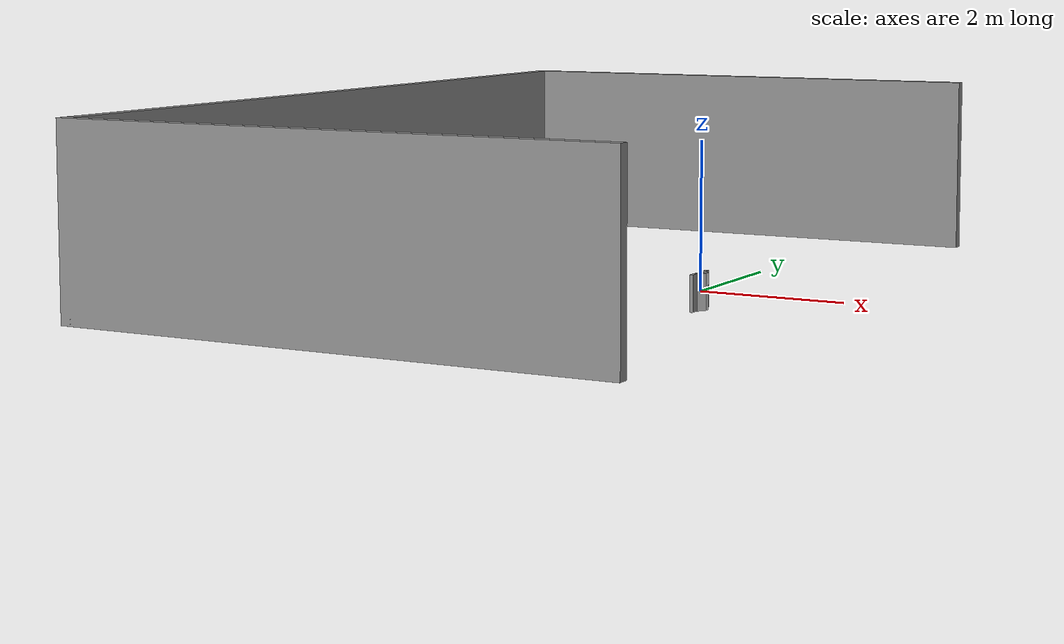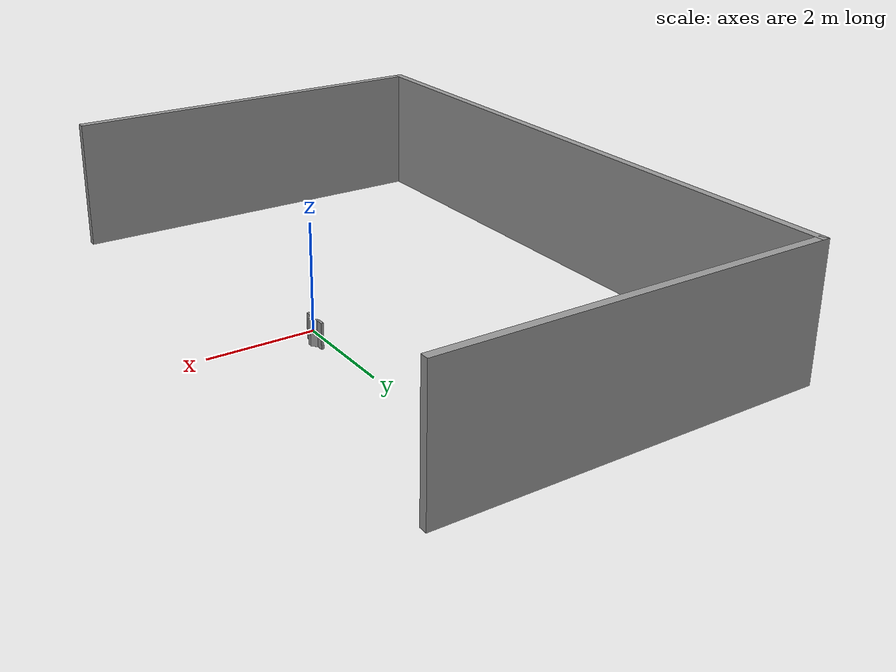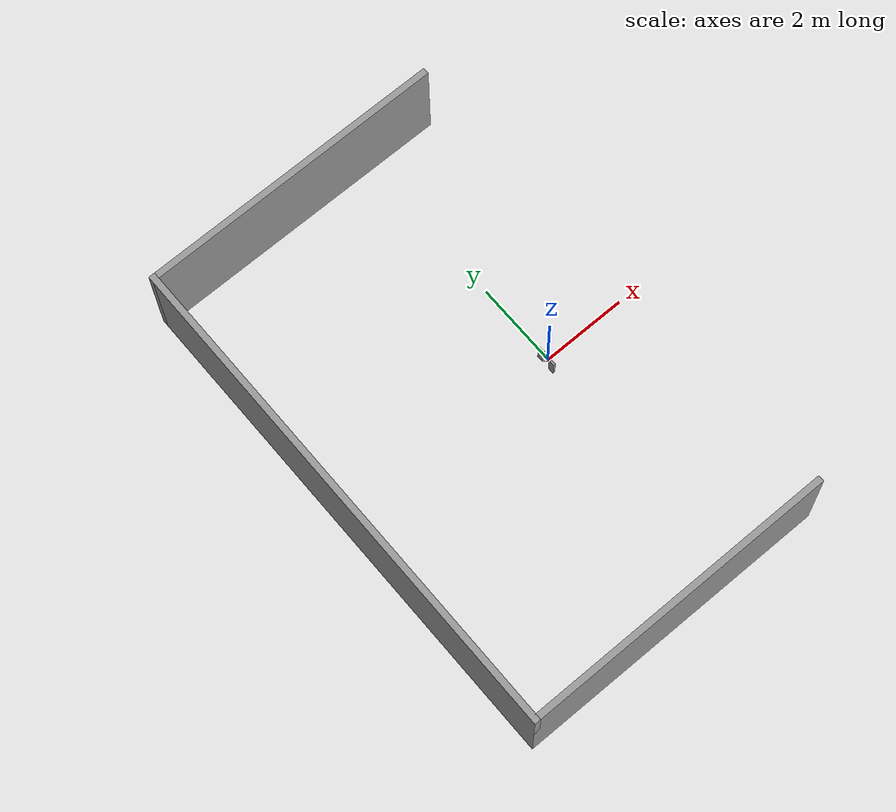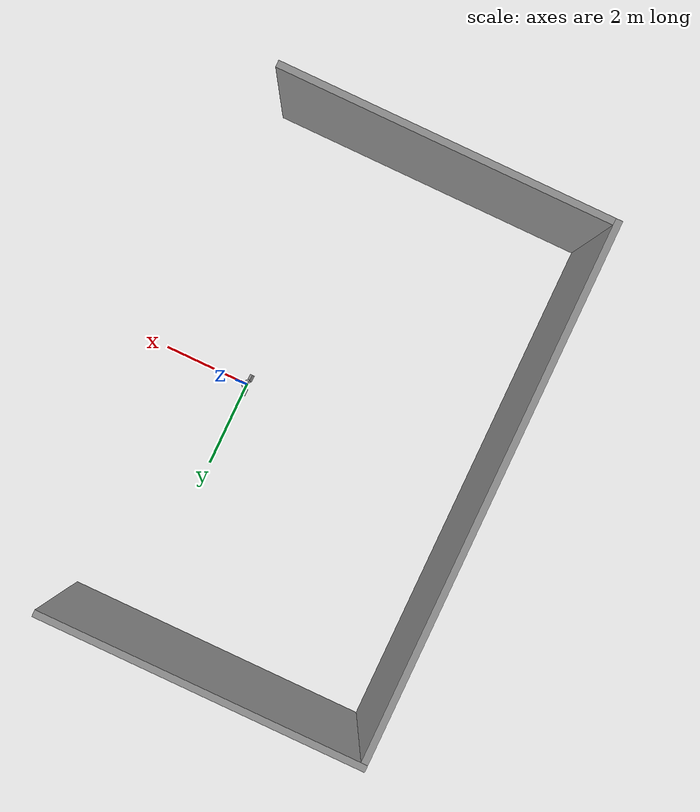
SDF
<?xml version='1.0'?>
<sdf version='1.6'>
  <model name='dock1'>
    <link name='link_1'>
      <inertial>
        <mass>1</mass>
        <inertia>
          <ixx>0.166667</ixx>
          <ixy>0</ixy>
          <ixz>0</ixz>
          <iyy>0.166667</iyy>
          <iyz>0</iyz>
          <izz>0.166667</izz>
        </inertia>
        <pose frame=''>0 0 0 0 -0 0</pose>
      </inertial>
      <pose frame=''>0.013094 -0.060872 6e-06 0 -0 0</pose>
      <gravity>1</gravity>
      <self_collide>0</self_collide>
      <kinematic>0</kinematic>
      <enable_wind>0</enable_wind>
      <visual name='visual'>
        <pose frame=''>0 0 0 0 0 -0.7854</pose>
        <geometry>
          <box>
            <size>0.05 0.15 0.5</size>
          </box>
        </geometry>
        <material>
          <lighting>1</lighting>
          <script>
            <uri>file://media/materials/scripts/gazebo.material</uri>
            <name>Gazebo/Grey</name>
          </script>
          <shader type='pixel'>
            <normal_map>__default__</normal_map>
          </shader>
          <ambient>0.3 0.3 0.3 1</ambient>
          <diffuse>0.7 0.7 0.7 1</diffuse>
          <specular>0.01 0.01 0.01 1</specular>
          <emissive>0 0 0 1</emissive>
        </material>
        <transparency>0</transparency>
        <cast_shadows>1</cast_shadows>
      </visual>
      <collision name='collision'>
        <laser_retro>0</laser_retro>
        <max_contacts>10</max_contacts>
        <pose frame=''>0 0 0 0 0 -0.7854</pose>
        <geometry>
          <box>
            <size>0.05 0.15 0.5</size>
          </box>
        </geometry>
        <surface>
          <friction>
            <ode>
              <mu>1</mu>
              <mu2>1</mu2>
              <fdir1>0 0 0</fdir1>
              <slip1>0</slip1>
              <slip2>0</slip2>
            </ode>
            <torsional>
              <coefficient>1</coefficient>
              <patch_radius>0</patch_radius>
              <surface_radius>0</surface_radius>
              <use_patch_radius>1</use_patch_radius>
              <ode>
                <slip>0</slip>
              </ode>
            </torsional>
          </friction>
          <bounce>
            <restitution_coefficient>0</restitution_coefficient>
            <threshold>1e+06</threshold>
          </bounce>
          <contact>
            <collide_without_contact>0</collide_without_contact>
            <collide_without_contact_bitmask>1</collide_without_contact_bitmask>
            <collide_bitmask>1</collide_bitmask>
            <ode>
              <soft_cfm>0</soft_cfm>
              <soft_erp>0.2</soft_erp>
              <kp>1e+13</kp>
              <kd>1</kd>
              <max_vel>0.01</max_vel>
              <min_depth>0</min_depth>
            </ode>
            <bullet>
              <split_impulse>1</split_impulse>
              <split_impulse_penetration_threshold>-0.01</split_impulse_penetration_threshold>
              <soft_cfm>0</soft_cfm>
              <soft_erp>0.2</soft_erp>
              <kp>1e+13</kp>
              <kd>1</kd>
            </bullet>
          </contact>
        </surface>
      </collision>
    </link>
    <link name='link_2'>
      <inertial>
        <mass>1</mass>
        <inertia>
          <ixx>0.166667</ixx>
          <ixy>0</ixy>
          <ixz>0</ixz>
          <iyy>0.166667</iyy>
          <iyz>0</iyz>
          <izz>0.166667</izz>
        </inertia>
        <pose frame=''>0 0 0 0 -0 0</pose>
      </inertial>
      <pose frame=''>0.01467 0.078828 0.000101 0 -0 0</pose>
      <gravity>1</gravity>
      <self_collide>0</self_collide>
      <kinematic>0</kinematic>
      <enable_wind>0</enable_wind>
      <visual name='visual'>
        <pose frame=''>0 0 0 0 -0 0.7854</pose>
        <geometry>
          <box>
            <size>0.05 0.15 0.5</size>
          </box>
        </geometry>
        <material>
          <lighting>1</lighting>
          <script>
            <uri>file://media/materials/scripts/gazebo.material</uri>
            <name>Gazebo/Grey</name>
          </script>
          <shader type='pixel'>
            <normal_map>__default__</normal_map>
          </shader>
          <ambient>0.3 0.3 0.3 1</ambient>
          <diffuse>0.7 0.7 0.7 1</diffuse>
          <specular>0.01 0.01 0.01 1</specular>
          <emissive>0 0 0 1</emissive>
        </material>
        <transparency>0</transparency>
        <cast_shadows>1</cast_shadows>
      </visual>
      <collision name='collision'>
        <laser_retro>0</laser_retro>
        <max_contacts>10</max_contacts>
        <pose frame=''>0 0 0 0 -0 0.7854</pose>
        <geometry>
          <box>
            <size>0.05 0.15 0.5</size>
          </box>
        </geometry>
        <surface>
          <friction>
            <ode>
              <mu>1</mu>
              <mu2>1</mu2>
              <fdir1>0 0 0</fdir1>
              <slip1>0</slip1>
              <slip2>0</slip2>
            </ode>
            <torsional>
              <coefficient>1</coefficient>
              <patch_radius>0</patch_radius>
              <surface_radius>0</surface_radius>
              <use_patch_radius>1</use_patch_radius>
              <ode>
                <slip>0</slip>
              </ode>
            </torsional>
          </friction>
          <bounce>
            <restitution_coefficient>0</restitution_coefficient>
            <threshold>1e+06</threshold>
          </bounce>
          <contact>
            <collide_without_contact>0</collide_without_contact>
            <collide_without_contact_bitmask>1</collide_without_contact_bitmask>
            <collide_bitmask>1</collide_bitmask>
            <ode>
              <soft_cfm>0</soft_cfm>
              <soft_erp>0.2</soft_erp>
              <kp>1e+13</kp>
              <kd>1</kd>
              <max_vel>0.01</max_vel>
              <min_depth>0</min_depth>
            </ode>
            <bullet>
              <split_impulse>1</split_impulse>
              <split_impulse_penetration_threshold>-0.01</split_impulse_penetration_threshold>
              <soft_cfm>0</soft_cfm>
              <soft_erp>0.2</soft_erp>
              <kp>1e+13</kp>
              <kd>1</kd>
            </bullet>
          </contact>
        </surface>
      </collision>
    </link>
    <link name='link_3'>
      <inertial>
        <mass>1</mass>
        <inertia>
          <ixx>0.166667</ixx>
          <ixy>0</ixy>
          <ixz>0</ixz>
          <iyy>0.166667</iyy>
          <iyz>0</iyz>
          <izz>0.166667</izz>
        </inertia>
        <pose frame=''>0 0 0 0 -0 0</pose>
      </inertial>
      <pose frame=''>-0.032339 -0.171493 3e-06 0 -0 0</pose>
      <gravity>1</gravity>
      <self_collide>0</self_collide>
      <kinematic>0</kinematic>
      <enable_wind>0</enable_wind>
      <visual name='visual'>
        <pose frame=''>0 0 0 0 -0 0</pose>
        <geometry>
          <box>
            <size>0.05 0.15 0.5</size>
          </box>
        </geometry>
        <material>
          <lighting>1</lighting>
          <script>
            <uri>file://media/materials/scripts/gazebo.material</uri>
            <name>Gazebo/Grey</name>
          </script>
          <shader type='pixel'>
            <normal_map>__default__</normal_map>
          </shader>
          <ambient>0.3 0.3 0.3 1</ambient>
          <diffuse>0.7 0.7 0.7 1</diffuse>
          <specular>0.01 0.01 0.01 1</specular>
          <emissive>0 0 0 1</emissive>
        </material>
        <transparency>0</transparency>
        <cast_shadows>1</cast_shadows>
      </visual>
      <collision name='collision'>
        <laser_retro>0</laser_retro>
        <max_contacts>10</max_contacts>
        <pose frame=''>0 0 0 0 -0 0</pose>
        <geometry>
          <box>
            <size>0.05 0.15 0.5</size>
          </box>
        </geometry>
        <surface>
          <friction>
            <ode>
              <mu>1</mu>
              <mu2>1</mu2>
              <fdir1>0 0 0</fdir1>
              <slip1>0</slip1>
              <slip2>0</slip2>
            </ode>
            <torsional>
              <coefficient>1</coefficient>
              <patch_radius>0</patch_radius>
              <surface_radius>0</surface_radius>
              <use_patch_radius>1</use_patch_radius>
              <ode>
                <slip>0</slip>
              </ode>
            </torsional>
          </friction>
          <bounce>
            <restitution_coefficient>0</restitution_coefficient>
            <threshold>1e+06</threshold>
          </bounce>
          <contact>
            <collide_without_contact>0</collide_without_contact>
            <collide_without_contact_bitmask>1</collide_without_contact_bitmask>
            <collide_bitmask>1</collide_bitmask>
            <ode>
              <soft_cfm>0</soft_cfm>
              <soft_erp>0.2</soft_erp>
              <kp>1e+13</kp>
              <kd>1</kd>
              <max_vel>0.01</max_vel>
              <min_depth>0</min_depth>
            </ode>
            <bullet>
              <split_impulse>1</split_impulse>
              <split_impulse_penetration_threshold>-0.01</split_impulse_penetration_threshold>
              <soft_cfm>0</soft_cfm>
              <soft_erp>0.2</soft_erp>
              <kp>1e+13</kp>
              <kd>1</kd>
            </bullet>
          </contact>
        </surface>
      </collision>
    </link>
    <link name='link_3_clone'>
      <inertial>
        <mass>1</mass>
        <inertia>
          <ixx>0.166667</ixx>
          <ixy>0</ixy>
          <ixz>0</ixz>
          <iyy>0.166667</iyy>
          <iyz>0</iyz>
          <izz>0.166667</izz>
        </inertia>
        <pose frame=''>0 0 0 0 -0 0</pose>
      </inertial>
      <pose frame=''>-0.030824 0.187821 -0.000858 0 -0 0</pose>
      <gravity>1</gravity>
      <self_collide>0</self_collide>
      <kinematic>0</kinematic>
      <enable_wind>0</enable_wind>
      <visual name='visual'>
        <pose frame=''>0 0 0 0 -0 0</pose>
        <geometry>
          <box>
            <size>0.05 0.15 0.5</size>
          </box>
        </geometry>
        <material>
          <lighting>1</lighting>
          <script>
            <uri>file://media/materials/scripts/gazebo.material</uri>
            <name>Gazebo/Grey</name>
          </script>
          <shader type='pixel'>
            <normal_map>__default__</normal_map>
          </shader>
          <ambient>0.3 0.3 0.3 1</ambient>
          <diffuse>0.7 0.7 0.7 1</diffuse>
          <specular>0.01 0.01 0.01 1</specular>
          <emissive>0 0 0 1</emissive>
        </material>
        <transparency>0</transparency>
        <cast_shadows>1</cast_shadows>
      </visual>
      <collision name='collision'>
        <laser_retro>0</laser_retro>
        <max_contacts>10</max_contacts>
        <pose frame=''>0 0 0 0 -0 0</pose>
        <geometry>
          <box>
            <size>0.05 0.15 0.5</size>
          </box>
        </geometry>
        <surface>
          <friction>
            <ode>
              <mu>1</mu>
              <mu2>1</mu2>
              <fdir1>0 0 0</fdir1>
              <slip1>0</slip1>
              <slip2>0</slip2>
            </ode>
            <torsional>
              <coefficient>1</coefficient>
              <patch_radius>0</patch_radius>
              <surface_radius>0</surface_radius>
              <use_patch_radius>1</use_patch_radius>
              <ode>
                <slip>0</slip>
              </ode>
            </torsional>
          </friction>
          <bounce>
            <restitution_coefficient>0</restitution_coefficient>
            <threshold>1e+06</threshold>
          </bounce>
          <contact>
            <collide_without_contact>0</collide_without_contact>
            <collide_without_contact_bitmask>1</collide_without_contact_bitmask>
            <collide_bitmask>1</collide_bitmask>
            <ode>
              <soft_cfm>0</soft_cfm>
              <soft_erp>0.2</soft_erp>
              <kp>1e+13</kp>
              <kd>1</kd>
              <max_vel>0.01</max_vel>
              <min_depth>0</min_depth>
            </ode>
            <bullet>
              <split_impulse>1</split_impulse>
              <split_impulse_penetration_threshold>-0.01</split_impulse_penetration_threshold>
              <soft_cfm>0</soft_cfm>
              <soft_erp>0.2</soft_erp>
              <kp>1e+13</kp>
              <kd>1</kd>
            </bullet>
          </contact>
        </surface>
      </collision>
    </link>
    <model name='wall1'>
      <pose frame=''>-1.89804 -0.075673 -0 0 -0 0</pose>
      <link name='Wall_31'>
        <collision name='Wall_31_Collision'>
          <geometry>
            <box>
              <size>7.25 0.15 2.5</size>
            </box>
          </geometry>
          <pose frame=''>0 0 1.25 0 -0 0</pose>
          <max_contacts>10</max_contacts>
          <surface>
            <contact>
              <ode/>
            </contact>
            <bounce/>
            <friction>
              <torsional>
                <ode/>
              </torsional>
              <ode/>
            </friction>
          </surface>
        </collision>
        <visual name='Wall_31_Visual'>
          <pose frame=''>0 0 1.25 0 -0 0</pose>
          <geometry>
            <box>
              <size>7.25 0.15 2.5</size>
            </box>
          </geometry>
          <material>
            <script>
              <uri>file://media/materials/scripts/gazebo.material</uri>
              <name>Gazebo/Grey</name>
            </script>
            <ambient>1 1 1 1</ambient>
          </material>
          <meta>
            <layer>0</layer>
          </meta>
        </visual>
        <pose frame=''>-0.125 5.925 0 0 -0 3.14159</pose>
        <self_collide>0</self_collide>
        <enable_wind>0</enable_wind>
        <kinematic>0</kinematic>
      </link>
      <link name='Wall_32'>
        <collision name='Wall_32_Collision'>
          <geometry>
            <box>
              <size>12 0.15 2.5</size>
            </box>
          </geometry>
          <pose frame=''>0 0 1.25 0 -0 0</pose>
          <max_contacts>10</max_contacts>
          <surface>
            <contact>
              <ode/>
            </contact>
            <bounce/>
            <friction>
              <torsional>
                <ode/>
              </torsional>
              <ode/>
            </friction>
          </surface>
        </collision>
        <visual name='Wall_32_Visual'>
          <pose frame=''>0 0 1.25 0 -0 0</pose>
          <geometry>
            <box>
              <size>12 0.15 2.5</size>
            </box>
          </geometry>
          <material>
            <script>
              <uri>file://media/materials/scripts/gazebo.material</uri>
              <name>Gazebo/Grey</name>
            </script>
            <ambient>1 1 1 1</ambient>
          </material>
          <meta>
            <layer>0</layer>
          </meta>
        </visual>
        <pose frame=''>-3.675 0 0 0 -0 -1.5708</pose>
        <self_collide>0</self_collide>
        <enable_wind>0</enable_wind>
        <kinematic>0</kinematic>
      </link>
      <link name='Wall_33'>
        <collision name='Wall_33_Collision'>
          <geometry>
            <box>
              <size>7.5 0.15 2.5</size>
            </box>
          </geometry>
          <pose frame=''>0 0 1.25 0 -0 0</pose>
          <max_contacts>10</max_contacts>
          <surface>
            <contact>
              <ode/>
            </contact>
            <bounce/>
            <friction>
              <torsional>
                <ode/>
              </torsional>
              <ode/>
            </friction>
          </surface>
        </collision>
        <visual name='Wall_33_Visual'>
          <pose frame=''>0 0 1.25 0 -0 0</pose>
          <geometry>
            <box>
              <size>7.5 0.15 2.5</size>
            </box>
          </geometry>
          <material>
            <script>
              <uri>file://media/materials/scripts/gazebo.material</uri>
              <name>Gazebo/Grey</name>
            </script>
            <ambient>1 1 1 1</ambient>
          </material>
          <meta>
            <layer>0</layer>
          </meta>
        </visual>
        <pose frame=''>0 -5.925 0 0 -0 0</pose>
        <self_collide>0</self_collide>
        <enable_wind>0</enable_wind>
        <kinematic>0</kinematic>
      </link>
      <static>1</static>
    </model>
    <static>0</static>
    <allow_auto_disable>1</allow_auto_disable>
  </model>
</sdf>
